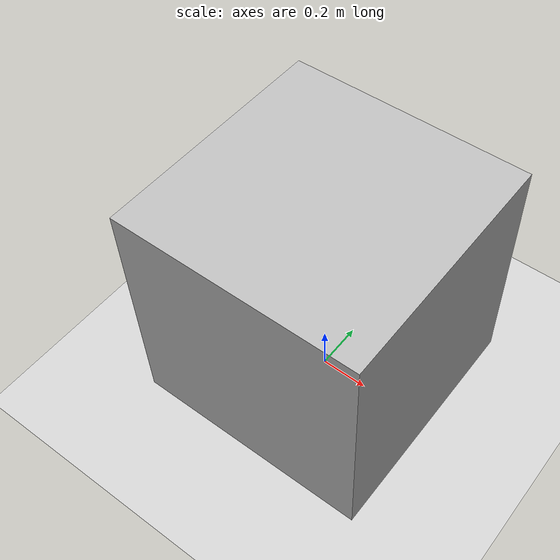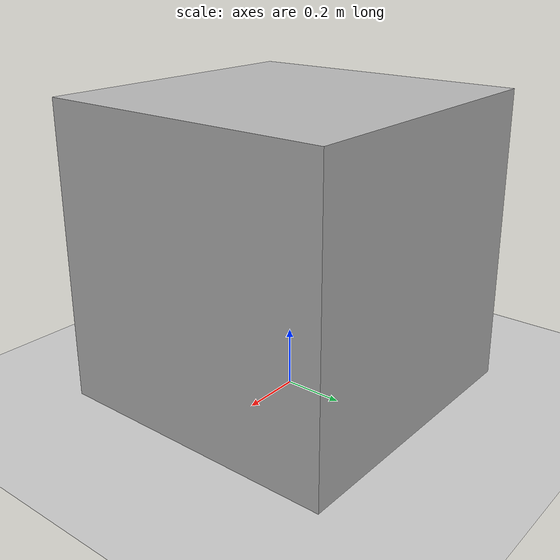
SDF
<?xml version="1.0"?>
<sdf version="1.3">
  <world name="default">
  <include>
	<uri>model://ground_plane</uri>
  </include>
  <include>
	<uri>model://sun</uri>
  </include>
  <include>
	<uri>model://my_mesh</uri>
  </include>
  </world>
</sdf>

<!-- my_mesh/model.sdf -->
<sdf version='1.6'>
  <model name='VO'>
    <link name='body'>
      <self_collide>0</self_collide>
      <enable_wind>0</enable_wind>
      <kinematic>0</kinematic>
      <pose frame=''>0 0 0.5 3.14159 -1.57046 3.14159</pose>
      <visual name='visual'>
        <geometry>
          <mesh>
            <uri>file://vo100x100.dae</uri>
          </mesh>
        </geometry>
        <pose frame=''>0 0 0 0 -0 0</pose>
        <transparency>0</transparency>
        <cast_shadows>1</cast_shadows>
      </visual>
    </link>
    <static>1</static>
    <allow_auto_disable>1</allow_auto_disable>
  </model>
</sdf>
